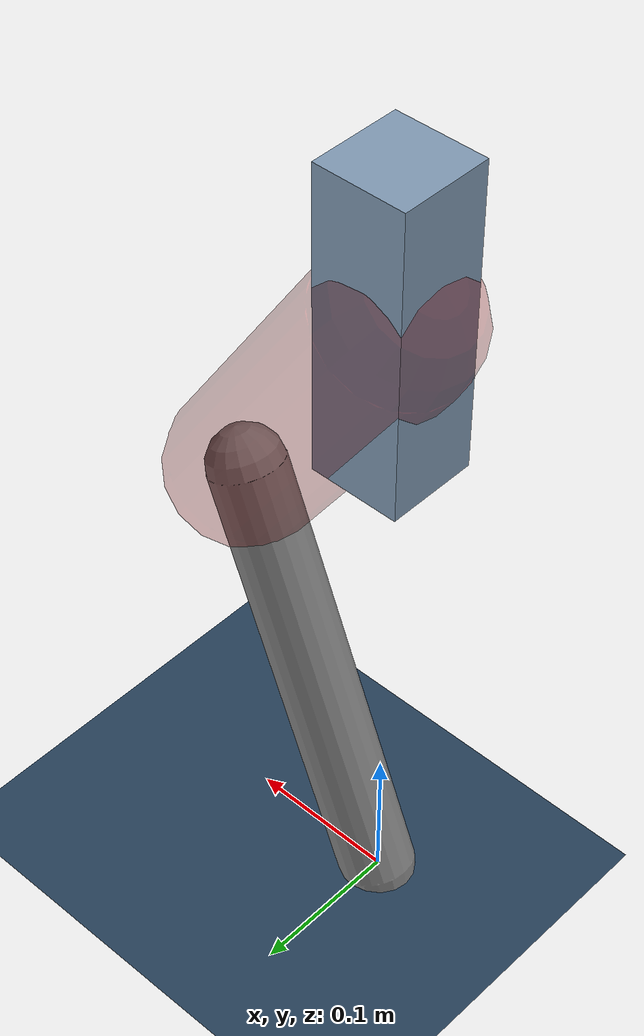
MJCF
<mujoco model="Hopper2D">
	<compiler inertiafromgeom="true" angle="radian" />
	<option timestep="0.001" integrator="implicit" cone="elliptic" solver="Newton" tolerance="1e-10" />

	<default>
		<geom contype="1" conaffinity="1" condim="3" friction="2 0.005 0.0001" solref="0.005 1" />
		<joint limited="true" damping="0.1" />
	</default>

	<asset>
		<texture name="skybox" type="skybox" builtin="gradient" rgb1=".4 .6 .8" rgb2="0 0 0" width="800" height="800" />
		<texture name="grid" type="2d" builtin="checker" rgb1=".1 .2 .3" rgb2=".2 .3 .4" width="300" height="300" mark="edge" markrgb=".2 .3 .4" />
		<material name="ground" texture="grid" texrepeat="1 1" texuniform="true" reflectance="0.1" />
		<material name="leg" rgba="0.5 0.6 0.7 1" />
	</asset>

	<worldbody>

		<geom name="floor" type="plane" size="5 5 0.25" material="ground" />

		<light directional="false" diffuse="0.8 0.8 0.8" specular="0.3 0.3 0.3" pos="0 0 2" dir="0 0 -1" />
		<light mode="targetbodycom" target="base" directional="false" diffuse="0.8 0.8 0.8" specular="0.3 0.3 0.3" pos="0 0 2" dir="0 0 -1" />

		<camera name="fixed" pos="0 -2 1" xyaxes="1 0 0 0 0 1" />
		<camera name="tracking" mode="trackcom" pos="0 -3 1" />

		<body name="root" pos="0 0 0.4518708346220318">
			<joint name="slide_x" type="slide" axis="1 0 0" range="-100 100" />
			<joint name="slide_z" type="slide" axis="0 0 1" range="0 10" />

			<body name="base" pos="0 0 0">
				<geom name="torso" type="box" size="0.03 0.03 0.1" mass="2.106" material="leg" />

				<body name="link1" pos="0 0 0" euler="0 0.9862532845695691 0">
					<joint type="hinge" axis="0 -1 0" pos="0 0 0" name="hinge1" limited="true" range="-3.14 3.14" stiffness="0" damping="0.1" />
					<geom name="thigh" type="capsule" fromto="0 0 0 0.20132972311297356 0 0" size="0.05" rgba="0.5 0 0 0.3" mass="0.7329243077824339" />

					<body name="link2" pos="0.20132972311297356 0 0" euler="0 0.9574670014508324 0">
						<joint type="hinge" axis="0 -1 0" pos="0 0 0" name="hinge2" limited="true" range="-3.14 3.14" stiffness="0" damping="0.1" />
						<geom name="shank" type="capsule" fromto="0 0 0 0.3049279399546393 0 0" size="0.025" mass="0.48744235196371144" />

					</body>
				</body>
			</body>
		</body>
	</worldbody>

	<actuator>
		<motor name="torque1" joint="hinge1" ctrlrange="-56.345044717495696 56.345044717495696" ctrllimited="true" gear="1" />
		<motor name="torque2" joint="hinge2" ctrlrange="-23.45213820717012 23.45213820717012" ctrllimited="true" gear="1" />
	</actuator>
</mujoco>
